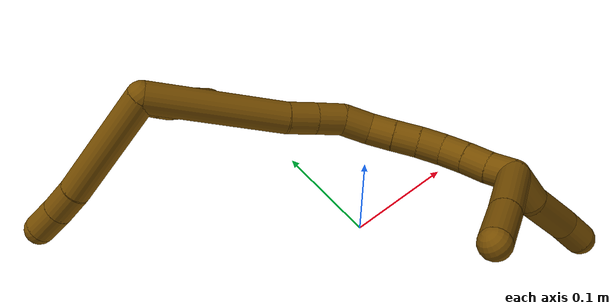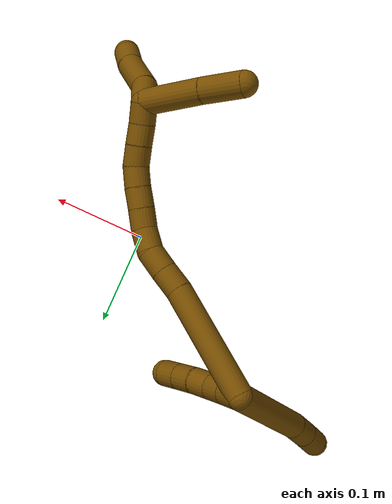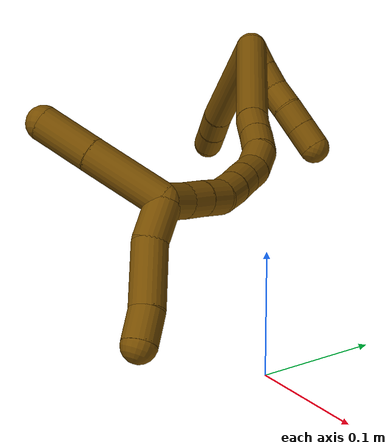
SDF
<sdf version="1.7">
 <world name="default">
  <model name="12">
   <static>0</static>
   <link name="12">
    <collision name="collision-cylinder-e_1_2_8">
     <pose>-0.041636 0.021073 -0.017867 -2.27405 -0.984947 1.71732</pose>
     <geometry><cylinder><radius>0.0125</radius><length>0.099938</length></cylinder></geometry>
     <surface>
      <friction><ode><mu>1.16</mu><mu2>1.16</mu2><slip1>0</slip1><slip2>0</slip2></ode></friction>
      <contact><ode><kp>1e+06</kp><kd>1</kd><max_vel>0</max_vel><min_depth>0.001</min_depth></ode></contact>
     </surface>
    </collision>
    <visual name="visual-cylinder-e_1_2_8">
     <pose>-0.041636 0.021073 -0.017867 -2.27405 -0.984947 1.71732</pose>
     <geometry><cylinder><radius>0.0125</radius><length>0.099938</length></cylinder></geometry>
     <material><ambient>0.466667 0.301961 0 1</ambient></material>
    </visual>
    <collision name="collision-cylinder-e_2_8_9">
     <pose>-0.093583 0.048477 -0.039569 -2.11545 -0.948198 1.47748</pose>
     <geometry><cylinder><radius>0.0125</radius><length>0.025383</length></cylinder></geometry>
     <surface>
      <friction><ode><mu>1.16</mu><mu2>1.16</mu2><slip1>0</slip1><slip2>0</slip2></ode></friction>
      <contact><ode><kp>1e+06</kp><kd>1</kd><max_vel>0</max_vel><min_depth>0.001</min_depth></ode></contact>
     </surface>
    </collision>
    <visual name="visual-cylinder-e_2_8_9">
     <pose>-0.093583 0.048477 -0.039569 -2.11545 -0.948198 1.47748</pose>
     <geometry><cylinder><radius>0.0125</radius><length>0.025383</length></cylinder></geometry>
     <material><ambient>0.466667 0.301961 0 1</ambient></material>
    </visual>
    <collision name="collision-cylinder-e_3_9_6">
     <pose>-0.114122 0.061003 -0.046443 -2.02678 -0.977253 1.41231</pose>
     <geometry><cylinder><radius>0.0125</radius><length>0.024678</length></cylinder></geometry>
     <surface>
      <friction><ode><mu>1.16</mu><mu2>1.16</mu2><slip1>0</slip1><slip2>0</slip2></ode></friction>
      <contact><ode><kp>1e+06</kp><kd>1</kd><max_vel>0</max_vel><min_depth>0.001</min_depth></ode></contact>
     </surface>
    </collision>
    <visual name="visual-cylinder-e_3_9_6">
     <pose>-0.114122 0.061003 -0.046443 -2.02678 -0.977253 1.41231</pose>
     <geometry><cylinder><radius>0.0125</radius><length>0.024678</length></cylinder></geometry>
     <material><ambient>0.466667 0.301961 0 1</ambient></material>
    </visual>
    <collision name="collision-cylinder-e_1_2_10">
     <pose>0.003214 0.006158 -0.007194 -2.43361 0.32719 -0.840165</pose>
     <geometry><cylinder><radius>0.0125</radius><length>0.02</length></cylinder></geometry>
     <surface>
      <friction><ode><mu>1.16</mu><mu2>1.16</mu2><slip1>0</slip1><slip2>0</slip2></ode></friction>
      <contact><ode><kp>1e+06</kp><kd>1</kd><max_vel>0</max_vel><min_depth>0.001</min_depth></ode></contact>
     </surface>
    </collision>
    <visual name="visual-cylinder-e_1_2_10">
     <pose>0.003214 0.006158 -0.007194 -2.43361 0.32719 -0.840165</pose>
     <geometry><cylinder><radius>0.0125</radius><length>0.02</length></cylinder></geometry>
     <material><ambient>0.466667 0.301961 0 1</ambient></material>
    </visual>
    <collision name="collision-cylinder-e_2_10_11">
     <pose>0.010312 0.018395 -0.021313 -2.42113 0.398877 -0.985014</pose>
     <geometry><cylinder><radius>0.0125</radius><length>0.02</length></cylinder></geometry>
     <surface>
      <friction><ode><mu>1.16</mu><mu2>1.16</mu2><slip1>0</slip1><slip2>0</slip2></ode></friction>
      <contact><ode><kp>1e+06</kp><kd>1</kd><max_vel>0</max_vel><min_depth>0.001</min_depth></ode></contact>
     </surface>
    </collision>
    <visual name="visual-cylinder-e_2_10_11">
     <pose>0.010312 0.018395 -0.021313 -2.42113 0.398877 -0.985014</pose>
     <geometry><cylinder><radius>0.0125</radius><length>0.02</length></cylinder></geometry>
     <material><ambient>0.466667 0.301961 0 1</ambient></material>
    </visual>
    <collision name="collision-cylinder-e_3_11_12">
     <pose>0.01971 0.030004 -0.034484 -2.41699 0.584156 -1.34126</pose>
     <geometry><cylinder><radius>0.0125</radius><length>0.02</length></cylinder></geometry>
     <surface>
      <friction><ode><mu>1.16</mu><mu2>1.16</mu2><slip1>0</slip1><slip2>0</slip2></ode></friction>
      <contact><ode><kp>1e+06</kp><kd>1</kd><max_vel>0</max_vel><min_depth>0.001</min_depth></ode></contact>
     </surface>
    </collision>
    <visual name="visual-cylinder-e_3_11_12">
     <pose>0.01971 0.030004 -0.034484 -2.41699 0.584156 -1.34126</pose>
     <geometry><cylinder><radius>0.0125</radius><length>0.02</length></cylinder></geometry>
     <material><ambient>0.466667 0.301961 0 1</ambient></material>
    </visual>
    <collision name="collision-cylinder-e_4_12_13">
     <pose>0.029706 0.041864 -0.047042 -2.35478 0.464643 -1.03621</pose>
     <geometry><cylinder><radius>0.0125</radius><length>0.02</length></cylinder></geometry>
     <surface>
      <friction><ode><mu>1.16</mu><mu2>1.16</mu2><slip1>0</slip1><slip2>0</slip2></ode></friction>
      <contact><ode><kp>1e+06</kp><kd>1</kd><max_vel>0</max_vel><min_depth>0.001</min_depth></ode></contact>
     </surface>
    </collision>
    <visual name="visual-cylinder-e_4_12_13">
     <pose>0.029706 0.041864 -0.047042 -2.35478 0.464643 -1.03621</pose>
     <geometry><cylinder><radius>0.0125</radius><length>0.02</length></cylinder></geometry>
     <material><ambient>0.466667 0.301961 0 1</ambient></material>
    </visual>
    <collision name="collision-cylinder-e_5_13_5">
     <pose>0.038627 0.054571 -0.05965 -2.34978 0.45997 -1.0212</pose>
     <geometry><cylinder><radius>0.0125</radius><length>0.02</length></cylinder></geometry>
     <surface>
      <friction><ode><mu>1.16</mu><mu2>1.16</mu2><slip1>0</slip1><slip2>0</slip2></ode></friction>
      <contact><ode><kp>1e+06</kp><kd>1</kd><max_vel>0</max_vel><min_depth>0.001</min_depth></ode></contact>
     </surface>
    </collision>
    <visual name="visual-cylinder-e_5_13_5">
     <pose>0.038627 0.054571 -0.05965 -2.34978 0.45997 -1.0212</pose>
     <geometry><cylinder><radius>0.0125</radius><length>0.02</length></cylinder></geometry>
     <material><ambient>0.466667 0.301961 0 1</ambient></material>
    </visual>
    <collision name="collision-cylinder-e_1_2_14">
     <pose>0.035366 -0.011441 -0.041408 2.87201 0.688754 2.41862</pose>
     <geometry><cylinder><radius>0.0125</radius><length>0.111289</length></cylinder></geometry>
     <surface>
      <friction><ode><mu>1.16</mu><mu2>1.16</mu2><slip1>0</slip1><slip2>0</slip2></ode></friction>
      <contact><ode><kp>1e+06</kp><kd>1</kd><max_vel>0</max_vel><min_depth>0.001</min_depth></ode></contact>
     </surface>
    </collision>
    <visual name="visual-cylinder-e_1_2_14">
     <pose>0.035366 -0.011441 -0.041408 2.87201 0.688754 2.41862</pose>
     <geometry><cylinder><radius>0.0125</radius><length>0.111289</length></cylinder></geometry>
     <material><ambient>0.466667 0.301961 0 1</ambient></material>
    </visual>
    <collision name="collision-cylinder-e_2_14_15">
     <pose>0.078969 -0.024303 -0.090654 2.96229 0.802128 2.72379</pose>
     <geometry><cylinder><radius>0.0125</radius><length>0.022915</length></cylinder></geometry>
     <surface>
      <friction><ode><mu>1.16</mu><mu2>1.16</mu2><slip1>0</slip1><slip2>0</slip2></ode></friction>
      <contact><ode><kp>1e+06</kp><kd>1</kd><max_vel>0</max_vel><min_depth>0.001</min_depth></ode></contact>
     </surface>
    </collision>
    <visual name="visual-cylinder-e_2_14_15">
     <pose>0.078969 -0.024303 -0.090654 2.96229 0.802128 2.72379</pose>
     <geometry><cylinder><radius>0.0125</radius><length>0.022915</length></cylinder></geometry>
     <material><ambient>0.466667 0.301961 0 1</ambient></material>
    </visual>
    <collision name="collision-cylinder-e_3_15_16">
     <pose>0.095326 -0.027587 -0.106285 2.90687 0.792061 2.5919</pose>
     <geometry><cylinder><radius>0.0125</radius><length>0.022818</length></cylinder></geometry>
     <surface>
      <friction><ode><mu>1.16</mu><mu2>1.16</mu2><slip1>0</slip1><slip2>0</slip2></ode></friction>
      <contact><ode><kp>1e+06</kp><kd>1</kd><max_vel>0</max_vel><min_depth>0.001</min_depth></ode></contact>
     </surface>
    </collision>
    <visual name="visual-cylinder-e_3_15_16">
     <pose>0.095326 -0.027587 -0.106285 2.90687 0.792061 2.5919</pose>
     <geometry><cylinder><radius>0.0125</radius><length>0.022818</length></cylinder></geometry>
     <material><ambient>0.466667 0.301961 0 1</ambient></material>
    </visual>
    <collision name="collision-cylinder-e_4_16_17">
     <pose>0.108793 -0.033523 -0.123144 2.7195 0.493545 1.73207</pose>
     <geometry><cylinder><radius>0.0125</radius><length>0.02257</length></cylinder></geometry>
     <surface>
      <friction><ode><mu>1.16</mu><mu2>1.16</mu2><slip1>0</slip1><slip2>0</slip2></ode></friction>
      <contact><ode><kp>1e+06</kp><kd>1</kd><max_vel>0</max_vel><min_depth>0.001</min_depth></ode></contact>
     </surface>
    </collision>
    <visual name="visual-cylinder-e_4_16_17">
     <pose>0.108793 -0.033523 -0.123144 2.7195 0.493545 1.73207</pose>
     <geometry><cylinder><radius>0.0125</radius><length>0.02257</length></cylinder></geometry>
     <material><ambient>0.466667 0.301961 0 1</ambient></material>
    </visual>
    <collision name="collision-cylinder-e_5_17_18">
     <pose>0.118846 -0.043859 -0.138595 2.36567 0.484401 1.08747</pose>
     <geometry><cylinder><radius>0.0125</radius><length>0.020215</length></cylinder></geometry>
     <surface>
      <friction><ode><mu>1.16</mu><mu2>1.16</mu2><slip1>0</slip1><slip2>0</slip2></ode></friction>
      <contact><ode><kp>1e+06</kp><kd>1</kd><max_vel>0</max_vel><min_depth>0.001</min_depth></ode></contact>
     </surface>
    </collision>
    <visual name="visual-cylinder-e_5_17_18">
     <pose>0.118846 -0.043859 -0.138595 2.36567 0.484401 1.08747</pose>
     <geometry><cylinder><radius>0.0125</radius><length>0.020215</length></cylinder></geometry>
     <material><ambient>0.466667 0.301961 0 1</ambient></material>
    </visual>
    <collision name="collision-cylinder-e_6_18_19">
     <pose>0.12847 -0.056164 -0.151359 2.38343 0.510285 1.15944</pose>
     <geometry><cylinder><radius>0.0125</radius><length>0.020135</length></cylinder></geometry>
     <surface>
      <friction><ode><mu>1.16</mu><mu2>1.16</mu2><slip1>0</slip1><slip2>0</slip2></ode></friction>
      <contact><ode><kp>1e+06</kp><kd>1</kd><max_vel>0</max_vel><min_depth>0.001</min_depth></ode></contact>
     </surface>
    </collision>
    <visual name="visual-cylinder-e_6_18_19">
     <pose>0.12847 -0.056164 -0.151359 2.38343 0.510285 1.15944</pose>
     <geometry><cylinder><radius>0.0125</radius><length>0.020135</length></cylinder></geometry>
     <material><ambient>0.466667 0.301961 0 1</ambient></material>
    </visual>
    <collision name="collision-cylinder-e_7_19_20">
     <pose>0.137654 -0.068772 -0.163971 2.33011 0.440263 0.960414</pose>
     <geometry><cylinder><radius>0.0125</radius><length>0.020019</length></cylinder></geometry>
     <surface>
      <friction><ode><mu>1.16</mu><mu2>1.16</mu2><slip1>0</slip1><slip2>0</slip2></ode></friction>
      <contact><ode><kp>1e+06</kp><kd>1</kd><max_vel>0</max_vel><min_depth>0.001</min_depth></ode></contact>
     </surface>
    </collision>
    <visual name="visual-cylinder-e_7_19_20">
     <pose>0.137654 -0.068772 -0.163971 2.33011 0.440263 0.960414</pose>
     <geometry><cylinder><radius>0.0125</radius><length>0.020019</length></cylinder></geometry>
     <material><ambient>0.466667 0.301961 0 1</ambient></material>
    </visual>
    <collision name="collision-cylinder-e_8_20_21">
     <pose>0.14468 -0.08395 -0.17452 2.03539 0.279162 0.447509</pose>
     <geometry><cylinder><radius>0.0125</radius><length>0.020038</length></cylinder></geometry>
     <surface>
      <friction><ode><mu>1.16</mu><mu2>1.16</mu2><slip1>0</slip1><slip2>0</slip2></ode></friction>
      <contact><ode><kp>1e+06</kp><kd>1</kd><max_vel>0</max_vel><min_depth>0.001</min_depth></ode></contact>
     </surface>
    </collision>
    <visual name="visual-cylinder-e_8_20_21">
     <pose>0.14468 -0.08395 -0.17452 2.03539 0.279162 0.447509</pose>
     <geometry><cylinder><radius>0.0125</radius><length>0.020038</length></cylinder></geometry>
     <material><ambient>0.466667 0.301961 0 1</ambient></material>
    </visual>
    <collision name="collision-cylinder-e_9_21_22">
     <pose>0.149871 -0.101109 -0.18342 2.06311 0.245502 0.406638</pose>
     <geometry><cylinder><radius>0.0125</radius><length>0.02</length></cylinder></geometry>
     <surface>
      <friction><ode><mu>1.16</mu><mu2>1.16</mu2><slip1>0</slip1><slip2>0</slip2></ode></friction>
      <contact><ode><kp>1e+06</kp><kd>1</kd><max_vel>0</max_vel><min_depth>0.001</min_depth></ode></contact>
     </surface>
    </collision>
    <visual name="visual-cylinder-e_9_21_22">
     <pose>0.149871 -0.101109 -0.18342 2.06311 0.245502 0.406638</pose>
     <geometry><cylinder><radius>0.0125</radius><length>0.02</length></cylinder></geometry>
     <material><ambient>0.466667 0.301961 0 1</ambient></material>
    </visual>
    <collision name="collision-cylinder-e_10_22_1">
     <pose>0.155465 -0.118317 -0.191877 1.99123 0.321861 0.490709</pose>
     <geometry><cylinder><radius>0.0125</radius><length>0.02</length></cylinder></geometry>
     <surface>
      <friction><ode><mu>1.16</mu><mu2>1.16</mu2><slip1>0</slip1><slip2>0</slip2></ode></friction>
      <contact><ode><kp>1e+06</kp><kd>1</kd><max_vel>0</max_vel><min_depth>0.001</min_depth></ode></contact>
     </surface>
    </collision>
    <visual name="visual-cylinder-e_10_22_1">
     <pose>0.155465 -0.118317 -0.191877 1.99123 0.321861 0.490709</pose>
     <geometry><cylinder><radius>0.0125</radius><length>0.02</length></cylinder></geometry>
     <material><ambient>0.466667 0.301961 0 1</ambient></material>
    </visual>
    <collision name="collision-cylinder-e_1_1_23">
     <pose>0.158919 -0.127201 -0.21021 3.12616 0.02008 1.8314</pose>
     <geometry><cylinder><radius>0.0125</radius><length>0.028931</length></cylinder></geometry>
     <surface>
      <friction><ode><mu>1.16</mu><mu2>1.16</mu2><slip1>0</slip1><slip2>0</slip2></ode></friction>
      <contact><ode><kp>1e+06</kp><kd>1</kd><max_vel>0</max_vel><min_depth>0.001</min_depth></ode></contact>
     </surface>
    </collision>
    <visual name="visual-cylinder-e_1_1_23">
     <pose>0.158919 -0.127201 -0.21021 3.12616 0.02008 1.8314</pose>
     <geometry><cylinder><radius>0.0125</radius><length>0.028931</length></cylinder></geometry>
     <material><ambient>0.466667 0.301961 0 1</ambient></material>
    </visual>
    <collision name="collision-cylinder-e_2_23_24">
     <pose>0.16591 -0.124199 -0.247033 -2.99837 0.288327 -2.22369</pose>
     <geometry><cylinder><radius>0.0125</radius><length>0.047133</length></cylinder></geometry>
     <surface>
      <friction><ode><mu>1.16</mu><mu2>1.16</mu2><slip1>0</slip1><slip2>0</slip2></ode></friction>
      <contact><ode><kp>1e+06</kp><kd>1</kd><max_vel>0</max_vel><min_depth>0.001</min_depth></ode></contact>
     </surface>
    </collision>
    <visual name="visual-cylinder-e_2_23_24">
     <pose>0.16591 -0.124199 -0.247033 -2.99837 0.288327 -2.22369</pose>
     <geometry><cylinder><radius>0.0125</radius><length>0.047133</length></cylinder></geometry>
     <material><ambient>0.466667 0.301961 0 1</ambient></material>
    </visual>
    <collision name="collision-cylinder-e_3_24_4">
     <pose>0.175171 -0.121187 -0.281085 3.12334 0.215558 2.9733</pose>
     <geometry><cylinder><radius>0.0125</radius><length>0.023936</length></cylinder></geometry>
     <surface>
      <friction><ode><mu>1.16</mu><mu2>1.16</mu2><slip1>0</slip1><slip2>0</slip2></ode></friction>
      <contact><ode><kp>1e+06</kp><kd>1</kd><max_vel>0</max_vel><min_depth>0.001</min_depth></ode></contact>
     </surface>
    </collision>
    <visual name="visual-cylinder-e_3_24_4">
     <pose>0.175171 -0.121187 -0.281085 3.12334 0.215558 2.9733</pose>
     <geometry><cylinder><radius>0.0125</radius><length>0.023936</length></cylinder></geometry>
     <material><ambient>0.466667 0.301961 0 1</ambient></material>
    </visual>
    <collision name="collision-cylinder-e_1_1_25">
     <pose>0.13969 -0.148125 -0.187332 1.19201 -0.693981 -0.481071</pose>
     <geometry><cylinder><radius>0.0125</radius><length>0.059219</length></cylinder></geometry>
     <surface>
      <friction><ode><mu>1.16</mu><mu2>1.16</mu2><slip1>0</slip1><slip2>0</slip2></ode></friction>
      <contact><ode><kp>1e+06</kp><kd>1</kd><max_vel>0</max_vel><min_depth>0.001</min_depth></ode></contact>
     </surface>
    </collision>
    <visual name="visual-cylinder-e_1_1_25">
     <pose>0.13969 -0.148125 -0.187332 1.19201 -0.693981 -0.481071</pose>
     <geometry><cylinder><radius>0.0125</radius><length>0.059219</length></cylinder></geometry>
     <material><ambient>0.466667 0.301961 0 1</ambient></material>
    </visual>
    <collision name="collision-cylinder-e_2_25_3">
     <pose>0.107238 -0.183293 -0.172869 1.16363 -0.724503 -0.488598</pose>
     <geometry><cylinder><radius>0.0125</radius><length>0.040781</length></cylinder></geometry>
     <surface>
      <friction><ode><mu>1.16</mu><mu2>1.16</mu2><slip1>0</slip1><slip2>0</slip2></ode></friction>
      <contact><ode><kp>1e+06</kp><kd>1</kd><max_vel>0</max_vel><min_depth>0.001</min_depth></ode></contact>
     </surface>
    </collision>
    <visual name="visual-cylinder-e_2_25_3">
     <pose>0.107238 -0.183293 -0.172869 1.16363 -0.724503 -0.488598</pose>
     <geometry><cylinder><radius>0.0125</radius><length>0.040781</length></cylinder></geometry>
     <material><ambient>0.466667 0.301961 0 1</ambient></material>
    </visual>
    <collision name="collision-sphere-3">
     <pose>0.093724 -0.197314 -0.166822 0 -0 0</pose>
     <geometry><sphere><radius>0.0125</radius></sphere></geometry>
     <surface>
      <friction><ode><mu>1.16</mu><mu2>1.16</mu2><slip1>0</slip1><slip2>0</slip2></ode></friction>
      <contact><ode><kp>1e+06</kp><kd>1</kd><max_vel>0</max_vel><min_depth>0.001</min_depth></ode></contact>
     </surface>
    </collision>
    <visual name="visual-sphere-3">
     <pose>0.093724 -0.197314 -0.166822 0 -0 0</pose>
     <geometry><sphere><radius>0.0125</radius></sphere></geometry>
     <material><ambient>0.466667 0.301961 0 1</ambient></material>
    </visual>
    <collision name="collision-sphere-25">
     <pose>0.120752 -0.169273 -0.178915 0 -0 0</pose>
     <geometry><sphere><radius>0.0125</radius></sphere></geometry>
     <surface>
      <friction><ode><mu>1.16</mu><mu2>1.16</mu2><slip1>0</slip1><slip2>0</slip2></ode></friction>
      <contact><ode><kp>1e+06</kp><kd>1</kd><max_vel>0</max_vel><min_depth>0.001</min_depth></ode></contact>
     </surface>
    </collision>
    <visual name="visual-sphere-25">
     <pose>0.120752 -0.169273 -0.178915 0 -0 0</pose>
     <geometry><sphere><radius>0.0125</radius></sphere></geometry>
     <material><ambient>0.466667 0.301961 0 1</ambient></material>
    </visual>
    <collision name="collision-sphere-4">
     <pose>0.177731 -0.121401 -0.292774 0 -0 0</pose>
     <geometry><sphere><radius>0.0125</radius></sphere></geometry>
     <surface>
      <friction><ode><mu>1.16</mu><mu2>1.16</mu2><slip1>0</slip1><slip2>0</slip2></ode></friction>
      <contact><ode><kp>1e+06</kp><kd>1</kd><max_vel>0</max_vel><min_depth>0.001</min_depth></ode></contact>
     </surface>
    </collision>
    <visual name="visual-sphere-4">
     <pose>0.177731 -0.121401 -0.292774 0 -0 0</pose>
     <geometry><sphere><radius>0.0125</radius></sphere></geometry>
     <material><ambient>0.466667 0.301961 0 1</ambient></material>
    </visual>
    <collision name="collision-sphere-24">
     <pose>0.172612 -0.120974 -0.269396 0 -0 0</pose>
     <geometry><sphere><radius>0.0125</radius></sphere></geometry>
     <surface>
      <friction><ode><mu>1.16</mu><mu2>1.16</mu2><slip1>0</slip1><slip2>0</slip2></ode></friction>
      <contact><ode><kp>1e+06</kp><kd>1</kd><max_vel>0</max_vel><min_depth>0.001</min_depth></ode></contact>
     </surface>
    </collision>
    <visual name="visual-sphere-24">
     <pose>0.172612 -0.120974 -0.269396 0 -0 0</pose>
     <geometry><sphere><radius>0.0125</radius></sphere></geometry>
     <material><ambient>0.466667 0.301961 0 1</ambient></material>
    </visual>
    <collision name="collision-sphere-23">
     <pose>0.159209 -0.127424 -0.224671 0 -0 0</pose>
     <geometry><sphere><radius>0.0125</radius></sphere></geometry>
     <surface>
      <friction><ode><mu>1.16</mu><mu2>1.16</mu2><slip1>0</slip1><slip2>0</slip2></ode></friction>
      <contact><ode><kp>1e+06</kp><kd>1</kd><max_vel>0</max_vel><min_depth>0.001</min_depth></ode></contact>
     </surface>
    </collision>
    <visual name="visual-sphere-23">
     <pose>0.159209 -0.127424 -0.224671 0 -0 0</pose>
     <geometry><sphere><radius>0.0125</radius></sphere></geometry>
     <material><ambient>0.466667 0.301961 0 1</ambient></material>
    </visual>
    <collision name="collision-sphere-1">
     <pose>0.158628 -0.126978 -0.195749 0 -0 0</pose>
     <geometry><sphere><radius>0.0125</radius></sphere></geometry>
     <surface>
      <friction><ode><mu>1.16</mu><mu2>1.16</mu2><slip1>0</slip1><slip2>0</slip2></ode></friction>
      <contact><ode><kp>1e+06</kp><kd>1</kd><max_vel>0</max_vel><min_depth>0.001</min_depth></ode></contact>
     </surface>
    </collision>
    <visual name="visual-sphere-1">
     <pose>0.158628 -0.126978 -0.195749 0 -0 0</pose>
     <geometry><sphere><radius>0.0125</radius></sphere></geometry>
     <material><ambient>0.466667 0.301961 0 1</ambient></material>
    </visual>
    <collision name="collision-sphere-22">
     <pose>0.152302 -0.109657 -0.188005 0 -0 0</pose>
     <geometry><sphere><radius>0.0125</radius></sphere></geometry>
     <surface>
      <friction><ode><mu>1.16</mu><mu2>1.16</mu2><slip1>0</slip1><slip2>0</slip2></ode></friction>
      <contact><ode><kp>1e+06</kp><kd>1</kd><max_vel>0</max_vel><min_depth>0.001</min_depth></ode></contact>
     </surface>
    </collision>
    <visual name="visual-sphere-22">
     <pose>0.152302 -0.109657 -0.188005 0 -0 0</pose>
     <geometry><sphere><radius>0.0125</radius></sphere></geometry>
     <material><ambient>0.466667 0.301961 0 1</ambient></material>
    </visual>
    <collision name="collision-sphere-21">
     <pose>0.147441 -0.09256 -0.178835 0 -0 0</pose>
     <geometry><sphere><radius>0.0125</radius></sphere></geometry>
     <surface>
      <friction><ode><mu>1.16</mu><mu2>1.16</mu2><slip1>0</slip1><slip2>0</slip2></ode></friction>
      <contact><ode><kp>1e+06</kp><kd>1</kd><max_vel>0</max_vel><min_depth>0.001</min_depth></ode></contact>
     </surface>
    </collision>
    <visual name="visual-sphere-21">
     <pose>0.147441 -0.09256 -0.178835 0 -0 0</pose>
     <geometry><sphere><radius>0.0125</radius></sphere></geometry>
     <material><ambient>0.466667 0.301961 0 1</ambient></material>
    </visual>
    <collision name="collision-sphere-11">
     <pose>0.014195 0.024475 -0.028238 0 -0 0</pose>
     <geometry><sphere><radius>0.0125</radius></sphere></geometry>
     <surface>
      <friction><ode><mu>1.16</mu><mu2>1.16</mu2><slip1>0</slip1><slip2>0</slip2></ode></friction>
      <contact><ode><kp>1e+06</kp><kd>1</kd><max_vel>0</max_vel><min_depth>0.001</min_depth></ode></contact>
     </surface>
    </collision>
    <visual name="visual-sphere-11">
     <pose>0.014195 0.024475 -0.028238 0 -0 0</pose>
     <geometry><sphere><radius>0.0125</radius></sphere></geometry>
     <material><ambient>0.466667 0.301961 0 1</ambient></material>
    </visual>
    <collision name="collision-sphere-10">
     <pose>0.006428 0.012316 -0.014388 0 -0 0</pose>
     <geometry><sphere><radius>0.0125</radius></sphere></geometry>
     <surface>
      <friction><ode><mu>1.16</mu><mu2>1.16</mu2><slip1>0</slip1><slip2>0</slip2></ode></friction>
      <contact><ode><kp>1e+06</kp><kd>1</kd><max_vel>0</max_vel><min_depth>0.001</min_depth></ode></contact>
     </surface>
    </collision>
    <visual name="visual-sphere-10">
     <pose>0.006428 0.012316 -0.014388 0 -0 0</pose>
     <geometry><sphere><radius>0.0125</radius></sphere></geometry>
     <material><ambient>0.466667 0.301961 0 1</ambient></material>
    </visual>
    <collision name="collision-sphere-6">
     <pose>-0.124351 0.067199 -0.049482 0 -0 0</pose>
     <geometry><sphere><radius>0.0125</radius></sphere></geometry>
     <surface>
      <friction><ode><mu>1.16</mu><mu2>1.16</mu2><slip1>0</slip1><slip2>0</slip2></ode></friction>
      <contact><ode><kp>1e+06</kp><kd>1</kd><max_vel>0</max_vel><min_depth>0.001</min_depth></ode></contact>
     </surface>
    </collision>
    <visual name="visual-sphere-6">
     <pose>-0.124351 0.067199 -0.049482 0 -0 0</pose>
     <geometry><sphere><radius>0.0125</radius></sphere></geometry>
     <material><ambient>0.466667 0.301961 0 1</ambient></material>
    </visual>
    <collision name="collision-sphere-9">
     <pose>-0.103893 0.054807 -0.043404 0 -0 0</pose>
     <geometry><sphere><radius>0.0125</radius></sphere></geometry>
     <surface>
      <friction><ode><mu>1.16</mu><mu2>1.16</mu2><slip1>0</slip1><slip2>0</slip2></ode></friction>
      <contact><ode><kp>1e+06</kp><kd>1</kd><max_vel>0</max_vel><min_depth>0.001</min_depth></ode></contact>
     </surface>
    </collision>
    <visual name="visual-sphere-9">
     <pose>-0.103893 0.054807 -0.043404 0 -0 0</pose>
     <geometry><sphere><radius>0.0125</radius></sphere></geometry>
     <material><ambient>0.466667 0.301961 0 1</ambient></material>
    </visual>
    <collision name="collision-sphere-2">
     <geometry><sphere><radius>0.0125</radius></sphere></geometry>
     <surface>
      <friction><ode><mu>1.16</mu><mu2>1.16</mu2><slip1>0</slip1><slip2>0</slip2></ode></friction>
      <contact><ode><kp>1e+06</kp><kd>1</kd><max_vel>0</max_vel><min_depth>0.001</min_depth></ode></contact>
     </surface>
    </collision>
    <visual name="visual-sphere-2">
     <geometry><sphere><radius>0.0125</radius></sphere></geometry>
     <material><ambient>0.466667 0.301961 0 1</ambient></material>
    </visual>
    <collision name="collision-sphere-19">
     <pose>0.133388 -0.062204 -0.157737 0 -0 0</pose>
     <geometry><sphere><radius>0.0125</radius></sphere></geometry>
     <surface>
      <friction><ode><mu>1.16</mu><mu2>1.16</mu2><slip1>0</slip1><slip2>0</slip2></ode></friction>
      <contact><ode><kp>1e+06</kp><kd>1</kd><max_vel>0</max_vel><min_depth>0.001</min_depth></ode></contact>
     </surface>
    </collision>
    <visual name="visual-sphere-19">
     <pose>0.133388 -0.062204 -0.157737 0 -0 0</pose>
     <geometry><sphere><radius>0.0125</radius></sphere></geometry>
     <material><ambient>0.466667 0.301961 0 1</ambient></material>
    </visual>
    <collision name="collision-sphere-8">
     <pose>-0.083273 0.042147 -0.035735 0 -0 0</pose>
     <geometry><sphere><radius>0.0125</radius></sphere></geometry>
     <surface>
      <friction><ode><mu>1.16</mu><mu2>1.16</mu2><slip1>0</slip1><slip2>0</slip2></ode></friction>
      <contact><ode><kp>1e+06</kp><kd>1</kd><max_vel>0</max_vel><min_depth>0.001</min_depth></ode></contact>
     </surface>
    </collision>
    <visual name="visual-sphere-8">
     <pose>-0.083273 0.042147 -0.035735 0 -0 0</pose>
     <geometry><sphere><radius>0.0125</radius></sphere></geometry>
     <material><ambient>0.466667 0.301961 0 1</ambient></material>
    </visual>
    <collision name="collision-sphere-12">
     <pose>0.025225 0.035533 -0.04073 0 -0 0</pose>
     <geometry><sphere><radius>0.0125</radius></sphere></geometry>
     <surface>
      <friction><ode><mu>1.16</mu><mu2>1.16</mu2><slip1>0</slip1><slip2>0</slip2></ode></friction>
      <contact><ode><kp>1e+06</kp><kd>1</kd><max_vel>0</max_vel><min_depth>0.001</min_depth></ode></contact>
     </surface>
    </collision>
    <visual name="visual-sphere-12">
     <pose>0.025225 0.035533 -0.04073 0 -0 0</pose>
     <geometry><sphere><radius>0.0125</radius></sphere></geometry>
     <material><ambient>0.466667 0.301961 0 1</ambient></material>
    </visual>
    <collision name="collision-sphere-13">
     <pose>0.034187 0.048194 -0.053355 0 -0 0</pose>
     <geometry><sphere><radius>0.0125</radius></sphere></geometry>
     <surface>
      <friction><ode><mu>1.16</mu><mu2>1.16</mu2><slip1>0</slip1><slip2>0</slip2></ode></friction>
      <contact><ode><kp>1e+06</kp><kd>1</kd><max_vel>0</max_vel><min_depth>0.001</min_depth></ode></contact>
     </surface>
    </collision>
    <visual name="visual-sphere-13">
     <pose>0.034187 0.048194 -0.053355 0 -0 0</pose>
     <geometry><sphere><radius>0.0125</radius></sphere></geometry>
     <material><ambient>0.466667 0.301961 0 1</ambient></material>
    </visual>
    <collision name="collision-sphere-5">
     <pose>0.043066 0.060947 -0.065945 0 -0 0</pose>
     <geometry><sphere><radius>0.0125</radius></sphere></geometry>
     <surface>
      <friction><ode><mu>1.16</mu><mu2>1.16</mu2><slip1>0</slip1><slip2>0</slip2></ode></friction>
      <contact><ode><kp>1e+06</kp><kd>1</kd><max_vel>0</max_vel><min_depth>0.001</min_depth></ode></contact>
     </surface>
    </collision>
    <visual name="visual-sphere-5">
     <pose>0.043066 0.060947 -0.065945 0 -0 0</pose>
     <geometry><sphere><radius>0.0125</radius></sphere></geometry>
     <material><ambient>0.466667 0.301961 0 1</ambient></material>
    </visual>
    <collision name="collision-sphere-14">
     <pose>0.070733 -0.022883 -0.082816 0 -0 0</pose>
     <geometry><sphere><radius>0.0125</radius></sphere></geometry>
     <surface>
      <friction><ode><mu>1.16</mu><mu2>1.16</mu2><slip1>0</slip1><slip2>0</slip2></ode></friction>
      <contact><ode><kp>1e+06</kp><kd>1</kd><max_vel>0</max_vel><min_depth>0.001</min_depth></ode></contact>
     </surface>
    </collision>
    <visual name="visual-sphere-14">
     <pose>0.070733 -0.022883 -0.082816 0 -0 0</pose>
     <geometry><sphere><radius>0.0125</radius></sphere></geometry>
     <material><ambient>0.466667 0.301961 0 1</ambient></material>
    </visual>
    <collision name="collision-sphere-15">
     <pose>0.087205 -0.025724 -0.098491 0 -0 0</pose>
     <geometry><sphere><radius>0.0125</radius></sphere></geometry>
     <surface>
      <friction><ode><mu>1.16</mu><mu2>1.16</mu2><slip1>0</slip1><slip2>0</slip2></ode></friction>
      <contact><ode><kp>1e+06</kp><kd>1</kd><max_vel>0</max_vel><min_depth>0.001</min_depth></ode></contact>
     </surface>
    </collision>
    <visual name="visual-sphere-15">
     <pose>0.087205 -0.025724 -0.098491 0 -0 0</pose>
     <geometry><sphere><radius>0.0125</radius></sphere></geometry>
     <material><ambient>0.466667 0.301961 0 1</ambient></material>
    </visual>
    <collision name="collision-sphere-16">
     <pose>0.103447 -0.029451 -0.114078 0 -0 0</pose>
     <geometry><sphere><radius>0.0125</radius></sphere></geometry>
     <surface>
      <friction><ode><mu>1.16</mu><mu2>1.16</mu2><slip1>0</slip1><slip2>0</slip2></ode></friction>
      <contact><ode><kp>1e+06</kp><kd>1</kd><max_vel>0</max_vel><min_depth>0.001</min_depth></ode></contact>
     </surface>
    </collision>
    <visual name="visual-sphere-16">
     <pose>0.103447 -0.029451 -0.114078 0 -0 0</pose>
     <geometry><sphere><radius>0.0125</radius></sphere></geometry>
     <material><ambient>0.466667 0.301961 0 1</ambient></material>
    </visual>
    <collision name="collision-sphere-17">
     <pose>0.114139 -0.037594 -0.13221 0 -0 0</pose>
     <geometry><sphere><radius>0.0125</radius></sphere></geometry>
     <surface>
      <friction><ode><mu>1.16</mu><mu2>1.16</mu2><slip1>0</slip1><slip2>0</slip2></ode></friction>
      <contact><ode><kp>1e+06</kp><kd>1</kd><max_vel>0</max_vel><min_depth>0.001</min_depth></ode></contact>
     </surface>
    </collision>
    <visual name="visual-sphere-17">
     <pose>0.114139 -0.037594 -0.13221 0 -0 0</pose>
     <geometry><sphere><radius>0.0125</radius></sphere></geometry>
     <material><ambient>0.466667 0.301961 0 1</ambient></material>
    </visual>
    <collision name="collision-sphere-18">
     <pose>0.123553 -0.050124 -0.14498 0 -0 0</pose>
     <geometry><sphere><radius>0.0125</radius></sphere></geometry>
     <surface>
      <friction><ode><mu>1.16</mu><mu2>1.16</mu2><slip1>0</slip1><slip2>0</slip2></ode></friction>
      <contact><ode><kp>1e+06</kp><kd>1</kd><max_vel>0</max_vel><min_depth>0.001</min_depth></ode></contact>
     </surface>
    </collision>
    <visual name="visual-sphere-18">
     <pose>0.123553 -0.050124 -0.14498 0 -0 0</pose>
     <geometry><sphere><radius>0.0125</radius></sphere></geometry>
     <material><ambient>0.466667 0.301961 0 1</ambient></material>
    </visual>
    <collision name="collision-sphere-20">
     <pose>0.141919 -0.07534 -0.170204 0 -0 0</pose>
     <geometry><sphere><radius>0.0125</radius></sphere></geometry>
     <surface>
      <friction><ode><mu>1.16</mu><mu2>1.16</mu2><slip1>0</slip1><slip2>0</slip2></ode></friction>
      <contact><ode><kp>1e+06</kp><kd>1</kd><max_vel>0</max_vel><min_depth>0.001</min_depth></ode></contact>
     </surface>
    </collision>
    <visual name="visual-sphere-20">
     <pose>0.141919 -0.07534 -0.170204 0 -0 0</pose>
     <geometry><sphere><radius>0.0125</radius></sphere></geometry>
     <material><ambient>0.466667 0.301961 0 1</ambient></material>
    </visual>
    <inertial>
     <pose>0.065415 -0.044668 -0.109268 0 -0 0</pose>
     <mass>0.75</mass>
     <inertia>
      <ixx>4.2e-05</ixx>
      <ixy>0</ixy>
      <ixz>0</ixz>
      <iyy>0.000288</iyy>
      <iyz>0</iyz>
      <izz>-1.9e-05</izz>
     </inertia>
    </inertial>
   </link>
   <pose>-0.145708 0.089755 0.217716 -0.58972 -0.276939 0.047779</pose>
  </model>
 </world>
</sdf>
